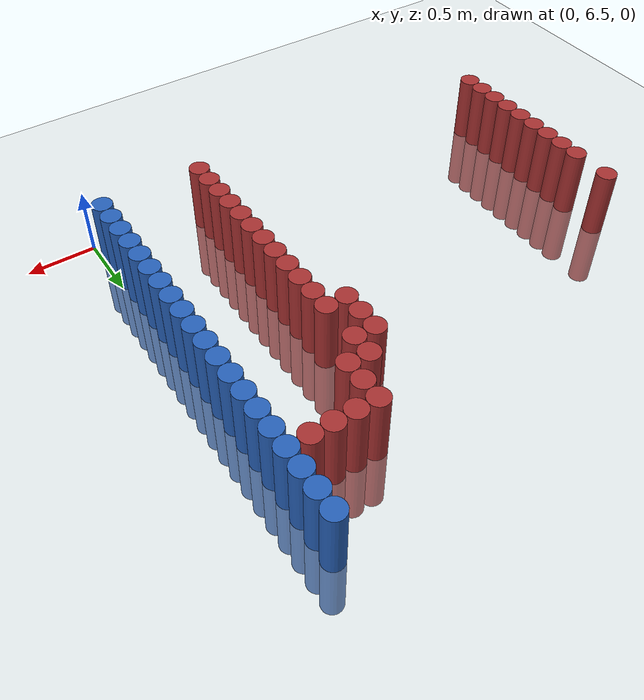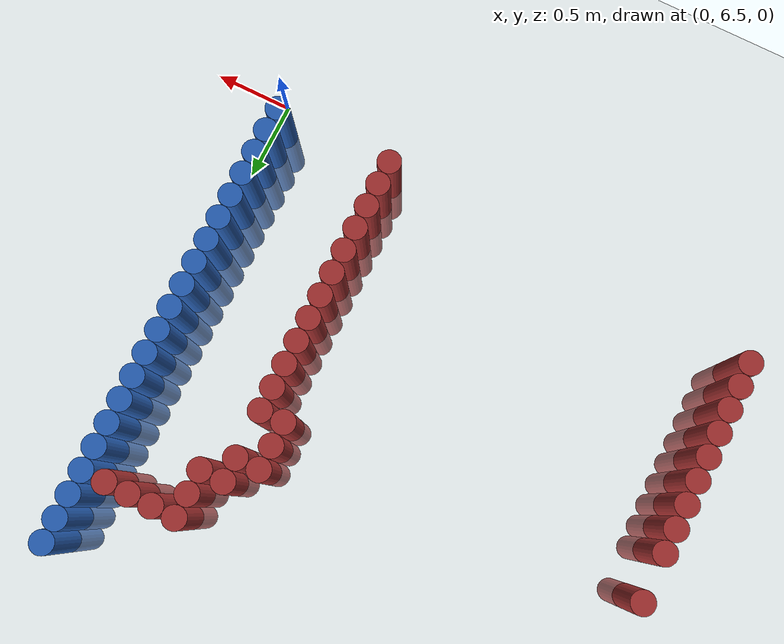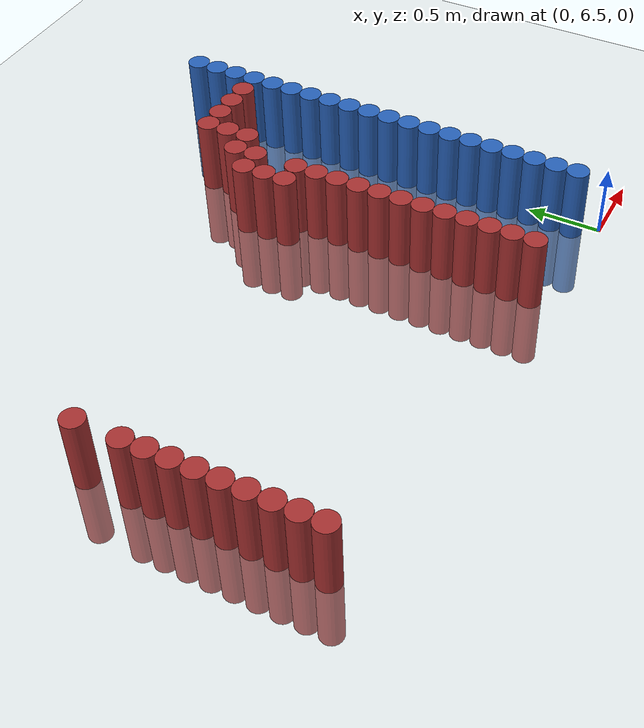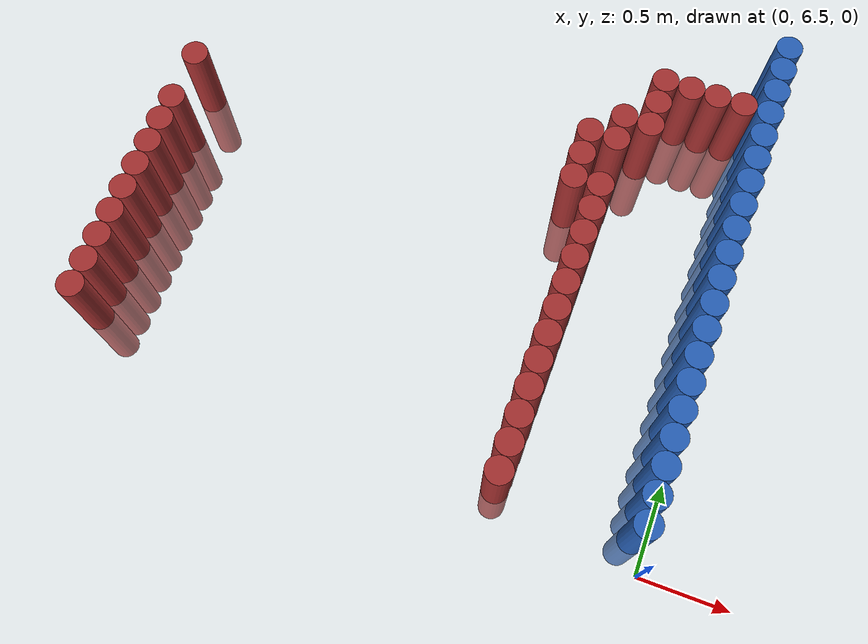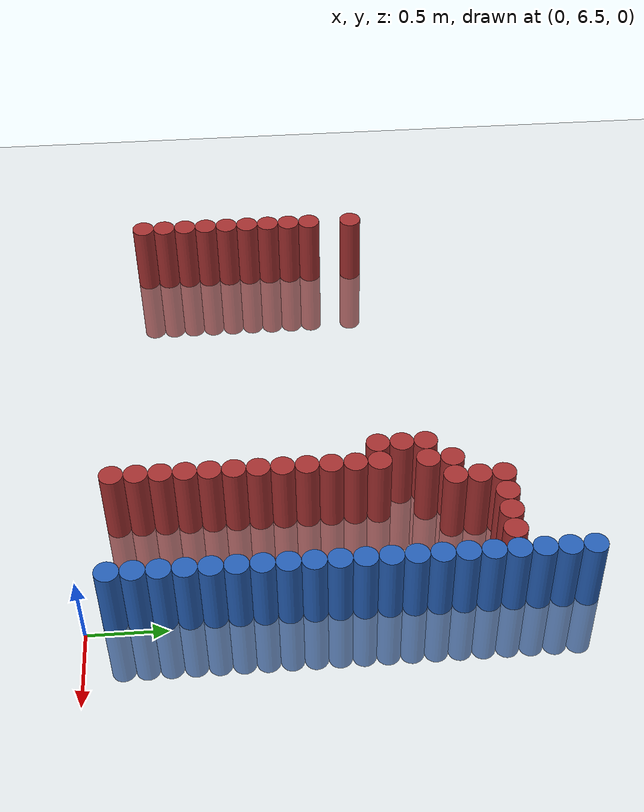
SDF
<sdf version="1.6">
 <world name="default">
  <model name="ground_plane">
   <static>1</static>
   <link name="link">
    <collision name="collision">
     <geometry><plane><normal>0 0 1</normal><size>100 100</size></plane></geometry>
     <surface><friction><ode><mu>100</mu><mu2>50</mu2></ode></friction></surface>
    </collision>
    <visual name="visual">
     <cast_shadows>0</cast_shadows>
     <geometry><plane><normal>0 0 1</normal><size>100 100</size></plane></geometry>
     <material>
      <script><uri>file://media/materials/scripts/gazebo.material</uri><name>Gazebo/Grey</name></script>
     </material>
    </visual>
   </link>
  </model>
  <model name="unit_cylinder_178">
   <static>1</static>
   <pose>-3.225000 6.825000 0.000000 0.000000 0.000000 0.000000</pose>
   <link name="link">
    <inertial>
     <mass>1</mass>
     <inertia><ixx>0.145833</ixx><ixy>0</ixy><ixz>0</ixz><iyy>0.145833</iyy><iyz>0</iyz><izz>0.125</izz></inertia>
    </inertial>
    <collision name="collision">
     <geometry><cylinder><radius>0.075000</radius><length>1</length></cylinder></geometry>
    </collision>
    <visual name="visual">
     <geometry><cylinder><radius>0.075000</radius><length>1</length></cylinder></geometry>
     <material>
      <ambient>0.648000 0.192000 0.192000 1</ambient>
      <diffuse>0.648000 0.192000 0.192000 1</diffuse>
     </material>
     <material>
      <script><name>Gazebo/Grey</name><uri>file://media/materials/scripts/gazebo.material</uri></script>
     </material>
    </visual>
   </link>
  </model>
  <model name="unit_cylinder_179">
   <static>1</static>
   <pose>-3.225000 6.975000 0.000000 0.000000 0.000000 0.000000</pose>
   <link name="link">
    <inertial>
     <mass>1</mass>
     <inertia><ixx>0.145833</ixx><ixy>0</ixy><ixz>0</ixz><iyy>0.145833</iyy><iyz>0</iyz><izz>0.125</izz></inertia>
    </inertial>
    <collision name="collision">
     <geometry><cylinder><radius>0.075000</radius><length>1</length></cylinder></geometry>
    </collision>
    <visual name="visual">
     <geometry><cylinder><radius>0.075000</radius><length>1</length></cylinder></geometry>
     <material>
      <ambient>0.648000 0.192000 0.192000 1</ambient>
      <diffuse>0.648000 0.192000 0.192000 1</diffuse>
     </material>
     <material>
      <script><name>Gazebo/Grey</name><uri>file://media/materials/scripts/gazebo.material</uri></script>
     </material>
    </visual>
   </link>
  </model>
  <model name="unit_cylinder_180">
   <static>1</static>
   <pose>-3.225000 7.125000 0.000000 0.000000 0.000000 0.000000</pose>
   <link name="link">
    <inertial>
     <mass>1</mass>
     <inertia><ixx>0.145833</ixx><ixy>0</ixy><ixz>0</ixz><iyy>0.145833</iyy><iyz>0</iyz><izz>0.125</izz></inertia>
    </inertial>
    <collision name="collision">
     <geometry><cylinder><radius>0.075000</radius><length>1</length></cylinder></geometry>
    </collision>
    <visual name="visual">
     <geometry><cylinder><radius>0.075000</radius><length>1</length></cylinder></geometry>
     <material>
      <ambient>0.648000 0.192000 0.192000 1</ambient>
      <diffuse>0.648000 0.192000 0.192000 1</diffuse>
     </material>
     <material>
      <script><name>Gazebo/Grey</name><uri>file://media/materials/scripts/gazebo.material</uri></script>
     </material>
    </visual>
   </link>
  </model>
  <model name="unit_cylinder_181">
   <static>1</static>
   <pose>-3.225000 7.275000 0.000000 0.000000 0.000000 0.000000</pose>
   <link name="link">
    <inertial>
     <mass>1</mass>
     <inertia><ixx>0.145833</ixx><ixy>0</ixy><ixz>0</ixz><iyy>0.145833</iyy><iyz>0</iyz><izz>0.125</izz></inertia>
    </inertial>
    <collision name="collision">
     <geometry><cylinder><radius>0.075000</radius><length>1</length></cylinder></geometry>
    </collision>
    <visual name="visual">
     <geometry><cylinder><radius>0.075000</radius><length>1</length></cylinder></geometry>
     <material>
      <ambient>0.648000 0.192000 0.192000 1</ambient>
      <diffuse>0.648000 0.192000 0.192000 1</diffuse>
     </material>
     <material>
      <script><name>Gazebo/Grey</name><uri>file://media/materials/scripts/gazebo.material</uri></script>
     </material>
    </visual>
   </link>
  </model>
  <model name="unit_cylinder_182">
   <static>1</static>
   <pose>-3.225000 7.425000 0.000000 0.000000 0.000000 0.000000</pose>
   <link name="link">
    <inertial>
     <mass>1</mass>
     <inertia><ixx>0.145833</ixx><ixy>0</ixy><ixz>0</ixz><iyy>0.145833</iyy><iyz>0</iyz><izz>0.125</izz></inertia>
    </inertial>
    <collision name="collision">
     <geometry><cylinder><radius>0.075000</radius><length>1</length></cylinder></geometry>
    </collision>
    <visual name="visual">
     <geometry><cylinder><radius>0.075000</radius><length>1</length></cylinder></geometry>
     <material>
      <ambient>0.648000 0.192000 0.192000 1</ambient>
      <diffuse>0.648000 0.192000 0.192000 1</diffuse>
     </material>
     <material>
      <script><name>Gazebo/Grey</name><uri>file://media/materials/scripts/gazebo.material</uri></script>
     </material>
    </visual>
   </link>
  </model>
  <model name="unit_cylinder_183">
   <static>1</static>
   <pose>-3.225000 7.575000 0.000000 0.000000 0.000000 0.000000</pose>
   <link name="link">
    <inertial>
     <mass>1</mass>
     <inertia><ixx>0.145833</ixx><ixy>0</ixy><ixz>0</ixz><iyy>0.145833</iyy><iyz>0</iyz><izz>0.125</izz></inertia>
    </inertial>
    <collision name="collision">
     <geometry><cylinder><radius>0.075000</radius><length>1</length></cylinder></geometry>
    </collision>
    <visual name="visual">
     <geometry><cylinder><radius>0.075000</radius><length>1</length></cylinder></geometry>
     <material>
      <ambient>0.648000 0.192000 0.192000 1</ambient>
      <diffuse>0.648000 0.192000 0.192000 1</diffuse>
     </material>
     <material>
      <script><name>Gazebo/Grey</name><uri>file://media/materials/scripts/gazebo.material</uri></script>
     </material>
    </visual>
   </link>
  </model>
  <model name="unit_cylinder_184">
   <static>1</static>
   <pose>-3.225000 7.725000 0.000000 0.000000 0.000000 0.000000</pose>
   <link name="link">
    <inertial>
     <mass>1</mass>
     <inertia><ixx>0.145833</ixx><ixy>0</ixy><ixz>0</ixz><iyy>0.145833</iyy><iyz>0</iyz><izz>0.125</izz></inertia>
    </inertial>
    <collision name="collision">
     <geometry><cylinder><radius>0.075000</radius><length>1</length></cylinder></geometry>
    </collision>
    <visual name="visual">
     <geometry><cylinder><radius>0.075000</radius><length>1</length></cylinder></geometry>
     <material>
      <ambient>0.648000 0.192000 0.192000 1</ambient>
      <diffuse>0.648000 0.192000 0.192000 1</diffuse>
     </material>
     <material>
      <script><name>Gazebo/Grey</name><uri>file://media/materials/scripts/gazebo.material</uri></script>
     </material>
    </visual>
   </link>
  </model>
  <model name="unit_cylinder_185">
   <static>1</static>
   <pose>-3.225000 7.875000 0.000000 0.000000 0.000000 0.000000</pose>
   <link name="link">
    <inertial>
     <mass>1</mass>
     <inertia><ixx>0.145833</ixx><ixy>0</ixy><ixz>0</ixz><iyy>0.145833</iyy><iyz>0</iyz><izz>0.125</izz></inertia>
    </inertial>
    <collision name="collision">
     <geometry><cylinder><radius>0.075000</radius><length>1</length></cylinder></geometry>
    </collision>
    <visual name="visual">
     <geometry><cylinder><radius>0.075000</radius><length>1</length></cylinder></geometry>
     <material>
      <ambient>0.648000 0.192000 0.192000 1</ambient>
      <diffuse>0.648000 0.192000 0.192000 1</diffuse>
     </material>
     <material>
      <script><name>Gazebo/Grey</name><uri>file://media/materials/scripts/gazebo.material</uri></script>
     </material>
    </visual>
   </link>
  </model>
  <model name="unit_cylinder_186">
   <static>1</static>
   <pose>-3.225000 8.025000 0.000000 0.000000 0.000000 0.000000</pose>
   <link name="link">
    <inertial>
     <mass>1</mass>
     <inertia><ixx>0.145833</ixx><ixy>0</ixy><ixz>0</ixz><iyy>0.145833</iyy><iyz>0</iyz><izz>0.125</izz></inertia>
    </inertial>
    <collision name="collision">
     <geometry><cylinder><radius>0.075000</radius><length>1</length></cylinder></geometry>
    </collision>
    <visual name="visual">
     <geometry><cylinder><radius>0.075000</radius><length>1</length></cylinder></geometry>
     <material>
      <ambient>0.648000 0.192000 0.192000 1</ambient>
      <diffuse>0.648000 0.192000 0.192000 1</diffuse>
     </material>
     <material>
      <script><name>Gazebo/Grey</name><uri>file://media/materials/scripts/gazebo.material</uri></script>
     </material>
    </visual>
   </link>
  </model>
  <model name="unit_cylinder_187">
   <static>1</static>
   <pose>-3.225000 8.325000 0.000000 0.000000 0.000000 0.000000</pose>
   <link name="link">
    <inertial>
     <mass>1</mass>
     <inertia><ixx>0.145833</ixx><ixy>0</ixy><ixz>0</ixz><iyy>0.145833</iyy><iyz>0</iyz><izz>0.125</izz></inertia>
    </inertial>
    <collision name="collision">
     <geometry><cylinder><radius>0.075000</radius><length>1</length></cylinder></geometry>
    </collision>
    <visual name="visual">
     <geometry><cylinder><radius>0.075000</radius><length>1</length></cylinder></geometry>
     <material>
      <ambient>0.648000 0.192000 0.192000 1</ambient>
      <diffuse>0.648000 0.192000 0.192000 1</diffuse>
     </material>
     <material>
      <script><name>Gazebo/Grey</name><uri>file://media/materials/scripts/gazebo.material</uri></script>
     </material>
    </visual>
   </link>
  </model>
  <model name="unit_cylinder_195">
   <static>1</static>
   <pose>-0.975000 8.325000 0.000000 0.000000 0.000000 0.000000</pose>
   <link name="link">
    <inertial>
     <mass>1</mass>
     <inertia><ixx>0.145833</ixx><ixy>0</ixy><ixz>0</ixz><iyy>0.145833</iyy><iyz>0</iyz><izz>0.125</izz></inertia>
    </inertial>
    <collision name="collision">
     <geometry><cylinder><radius>0.075000</radius><length>1</length></cylinder></geometry>
    </collision>
    <visual name="visual">
     <geometry><cylinder><radius>0.075000</radius><length>1</length></cylinder></geometry>
     <material>
      <ambient>0.648000 0.192000 0.192000 1</ambient>
      <diffuse>0.648000 0.192000 0.192000 1</diffuse>
     </material>
     <material>
      <script><name>Gazebo/Grey</name><uri>file://media/materials/scripts/gazebo.material</uri></script>
     </material>
    </visual>
   </link>
  </model>
  <model name="unit_cylinder_196">
   <static>1</static>
   <pose>-0.975000 8.475000 0.000000 0.000000 0.000000 0.000000</pose>
   <link name="link">
    <inertial>
     <mass>1</mass>
     <inertia><ixx>0.145833</ixx><ixy>0</ixy><ixz>0</ixz><iyy>0.145833</iyy><iyz>0</iyz><izz>0.125</izz></inertia>
    </inertial>
    <collision name="collision">
     <geometry><cylinder><radius>0.075000</radius><length>1</length></cylinder></geometry>
    </collision>
    <visual name="visual">
     <geometry><cylinder><radius>0.075000</radius><length>1</length></cylinder></geometry>
     <material>
      <ambient>0.648000 0.192000 0.192000 1</ambient>
      <diffuse>0.648000 0.192000 0.192000 1</diffuse>
     </material>
     <material>
      <script><name>Gazebo/Grey</name><uri>file://media/materials/scripts/gazebo.material</uri></script>
     </material>
    </visual>
   </link>
  </model>
  <model name="unit_cylinder_197">
   <static>1</static>
   <pose>-0.975000 8.625000 0.000000 0.000000 0.000000 0.000000</pose>
   <link name="link">
    <inertial>
     <mass>1</mass>
     <inertia><ixx>0.145833</ixx><ixy>0</ixy><ixz>0</ixz><iyy>0.145833</iyy><iyz>0</iyz><izz>0.125</izz></inertia>
    </inertial>
    <collision name="collision">
     <geometry><cylinder><radius>0.075000</radius><length>1</length></cylinder></geometry>
    </collision>
    <visual name="visual">
     <geometry><cylinder><radius>0.075000</radius><length>1</length></cylinder></geometry>
     <material>
      <ambient>0.648000 0.192000 0.192000 1</ambient>
      <diffuse>0.648000 0.192000 0.192000 1</diffuse>
     </material>
     <material>
      <script><name>Gazebo/Grey</name><uri>file://media/materials/scripts/gazebo.material</uri></script>
     </material>
    </visual>
   </link>
  </model>
  <model name="unit_cylinder_206">
   <static>1</static>
   <pose>-0.825000 6.675000 0.000000 0.000000 0.000000 0.000000</pose>
   <link name="link">
    <inertial>
     <mass>1</mass>
     <inertia><ixx>0.145833</ixx><ixy>0</ixy><ixz>0</ixz><iyy>0.145833</iyy><iyz>0</iyz><izz>0.125</izz></inertia>
    </inertial>
    <collision name="collision">
     <geometry><cylinder><radius>0.075000</radius><length>1</length></cylinder></geometry>
    </collision>
    <visual name="visual">
     <geometry><cylinder><radius>0.075000</radius><length>1</length></cylinder></geometry>
     <material>
      <ambient>0.648000 0.192000 0.192000 1</ambient>
      <diffuse>0.648000 0.192000 0.192000 1</diffuse>
     </material>
     <material>
      <script><name>Gazebo/Grey</name><uri>file://media/materials/scripts/gazebo.material</uri></script>
     </material>
    </visual>
   </link>
  </model>
  <model name="unit_cylinder_207">
   <static>1</static>
   <pose>-0.825000 6.825000 0.000000 0.000000 0.000000 0.000000</pose>
   <link name="link">
    <inertial>
     <mass>1</mass>
     <inertia><ixx>0.145833</ixx><ixy>0</ixy><ixz>0</ixz><iyy>0.145833</iyy><iyz>0</iyz><izz>0.125</izz></inertia>
    </inertial>
    <collision name="collision">
     <geometry><cylinder><radius>0.075000</radius><length>1</length></cylinder></geometry>
    </collision>
    <visual name="visual">
     <geometry><cylinder><radius>0.075000</radius><length>1</length></cylinder></geometry>
     <material>
      <ambient>0.648000 0.192000 0.192000 1</ambient>
      <diffuse>0.648000 0.192000 0.192000 1</diffuse>
     </material>
     <material>
      <script><name>Gazebo/Grey</name><uri>file://media/materials/scripts/gazebo.material</uri></script>
     </material>
    </visual>
   </link>
  </model>
  <model name="unit_cylinder_208">
   <static>1</static>
   <pose>-0.825000 6.975000 0.000000 0.000000 0.000000 0.000000</pose>
   <link name="link">
    <inertial>
     <mass>1</mass>
     <inertia><ixx>0.145833</ixx><ixy>0</ixy><ixz>0</ixz><iyy>0.145833</iyy><iyz>0</iyz><izz>0.125</izz></inertia>
    </inertial>
    <collision name="collision">
     <geometry><cylinder><radius>0.075000</radius><length>1</length></cylinder></geometry>
    </collision>
    <visual name="visual">
     <geometry><cylinder><radius>0.075000</radius><length>1</length></cylinder></geometry>
     <material>
      <ambient>0.648000 0.192000 0.192000 1</ambient>
      <diffuse>0.648000 0.192000 0.192000 1</diffuse>
     </material>
     <material>
      <script><name>Gazebo/Grey</name><uri>file://media/materials/scripts/gazebo.material</uri></script>
     </material>
    </visual>
   </link>
  </model>
  <model name="unit_cylinder_209">
   <static>1</static>
   <pose>-0.825000 7.125000 0.000000 0.000000 0.000000 0.000000</pose>
   <link name="link">
    <inertial>
     <mass>1</mass>
     <inertia><ixx>0.145833</ixx><ixy>0</ixy><ixz>0</ixz><iyy>0.145833</iyy><iyz>0</iyz><izz>0.125</izz></inertia>
    </inertial>
    <collision name="collision">
     <geometry><cylinder><radius>0.075000</radius><length>1</length></cylinder></geometry>
    </collision>
    <visual name="visual">
     <geometry><cylinder><radius>0.075000</radius><length>1</length></cylinder></geometry>
     <material>
      <ambient>0.648000 0.192000 0.192000 1</ambient>
      <diffuse>0.648000 0.192000 0.192000 1</diffuse>
     </material>
     <material>
      <script><name>Gazebo/Grey</name><uri>file://media/materials/scripts/gazebo.material</uri></script>
     </material>
    </visual>
   </link>
  </model>
  <model name="unit_cylinder_210">
   <static>1</static>
   <pose>-0.825000 7.275000 0.000000 0.000000 0.000000 0.000000</pose>
   <link name="link">
    <inertial>
     <mass>1</mass>
     <inertia><ixx>0.145833</ixx><ixy>0</ixy><ixz>0</ixz><iyy>0.145833</iyy><iyz>0</iyz><izz>0.125</izz></inertia>
    </inertial>
    <collision name="collision">
     <geometry><cylinder><radius>0.075000</radius><length>1</length></cylinder></geometry>
    </collision>
    <visual name="visual">
     <geometry><cylinder><radius>0.075000</radius><length>1</length></cylinder></geometry>
     <material>
      <ambient>0.648000 0.192000 0.192000 1</ambient>
      <diffuse>0.648000 0.192000 0.192000 1</diffuse>
     </material>
     <material>
      <script><name>Gazebo/Grey</name><uri>file://media/materials/scripts/gazebo.material</uri></script>
     </material>
    </visual>
   </link>
  </model>
  <model name="unit_cylinder_211">
   <static>1</static>
   <pose>-0.825000 7.425000 0.000000 0.000000 0.000000 0.000000</pose>
   <link name="link">
    <inertial>
     <mass>1</mass>
     <inertia><ixx>0.145833</ixx><ixy>0</ixy><ixz>0</ixz><iyy>0.145833</iyy><iyz>0</iyz><izz>0.125</izz></inertia>
    </inertial>
    <collision name="collision">
     <geometry><cylinder><radius>0.075000</radius><length>1</length></cylinder></geometry>
    </collision>
    <visual name="visual">
     <geometry><cylinder><radius>0.075000</radius><length>1</length></cylinder></geometry>
     <material>
      <ambient>0.648000 0.192000 0.192000 1</ambient>
      <diffuse>0.648000 0.192000 0.192000 1</diffuse>
     </material>
     <material>
      <script><name>Gazebo/Grey</name><uri>file://media/materials/scripts/gazebo.material</uri></script>
     </material>
    </visual>
   </link>
  </model>
  <model name="unit_cylinder_212">
   <static>1</static>
   <pose>-0.825000 7.575000 0.000000 0.000000 0.000000 0.000000</pose>
   <link name="link">
    <inertial>
     <mass>1</mass>
     <inertia><ixx>0.145833</ixx><ixy>0</ixy><ixz>0</ixz><iyy>0.145833</iyy><iyz>0</iyz><izz>0.125</izz></inertia>
    </inertial>
    <collision name="collision">
     <geometry><cylinder><radius>0.075000</radius><length>1</length></cylinder></geometry>
    </collision>
    <visual name="visual">
     <geometry><cylinder><radius>0.075000</radius><length>1</length></cylinder></geometry>
     <material>
      <ambient>0.648000 0.192000 0.192000 1</ambient>
      <diffuse>0.648000 0.192000 0.192000 1</diffuse>
     </material>
     <material>
      <script><name>Gazebo/Grey</name><uri>file://media/materials/scripts/gazebo.material</uri></script>
     </material>
    </visual>
   </link>
  </model>
  <model name="unit_cylinder_213">
   <static>1</static>
   <pose>-0.825000 7.725000 0.000000 0.000000 0.000000 0.000000</pose>
   <link name="link">
    <inertial>
     <mass>1</mass>
     <inertia><ixx>0.145833</ixx><ixy>0</ixy><ixz>0</ixz><iyy>0.145833</iyy><iyz>0</iyz><izz>0.125</izz></inertia>
    </inertial>
    <collision name="collision">
     <geometry><cylinder><radius>0.075000</radius><length>1</length></cylinder></geometry>
    </collision>
    <visual name="visual">
     <geometry><cylinder><radius>0.075000</radius><length>1</length></cylinder></geometry>
     <material>
      <ambient>0.648000 0.192000 0.192000 1</ambient>
      <diffuse>0.648000 0.192000 0.192000 1</diffuse>
     </material>
     <material>
      <script><name>Gazebo/Grey</name><uri>file://media/materials/scripts/gazebo.material</uri></script>
     </material>
    </visual>
   </link>
  </model>
  <model name="unit_cylinder_214">
   <static>1</static>
   <pose>-0.825000 7.875000 0.000000 0.000000 0.000000 0.000000</pose>
   <link name="link">
    <inertial>
     <mass>1</mass>
     <inertia><ixx>0.145833</ixx><ixy>0</ixy><ixz>0</ixz><iyy>0.145833</iyy><iyz>0</iyz><izz>0.125</izz></inertia>
    </inertial>
    <collision name="collision">
     <geometry><cylinder><radius>0.075000</radius><length>1</length></cylinder></geometry>
    </collision>
    <visual name="visual">
     <geometry><cylinder><radius>0.075000</radius><length>1</length></cylinder></geometry>
     <material>
      <ambient>0.648000 0.192000 0.192000 1</ambient>
      <diffuse>0.648000 0.192000 0.192000 1</diffuse>
     </material>
     <material>
      <script><name>Gazebo/Grey</name><uri>file://media/materials/scripts/gazebo.material</uri></script>
     </material>
    </visual>
   </link>
  </model>
  <model name="unit_cylinder_215">
   <static>1</static>
   <pose>-0.825000 8.025000 0.000000 0.000000 0.000000 0.000000</pose>
   <link name="link">
    <inertial>
     <mass>1</mass>
     <inertia><ixx>0.145833</ixx><ixy>0</ixy><ixz>0</ixz><iyy>0.145833</iyy><iyz>0</iyz><izz>0.125</izz></inertia>
    </inertial>
    <collision name="collision">
     <geometry><cylinder><radius>0.075000</radius><length>1</length></cylinder></geometry>
    </collision>
    <visual name="visual">
     <geometry><cylinder><radius>0.075000</radius><length>1</length></cylinder></geometry>
     <material>
      <ambient>0.648000 0.192000 0.192000 1</ambient>
      <diffuse>0.648000 0.192000 0.192000 1</diffuse>
     </material>
     <material>
      <script><name>Gazebo/Grey</name><uri>file://media/materials/scripts/gazebo.material</uri></script>
     </material>
    </visual>
   </link>
  </model>
  <model name="unit_cylinder_216">
   <static>1</static>
   <pose>-0.825000 8.175000 0.000000 0.000000 0.000000 0.000000</pose>
   <link name="link">
    <inertial>
     <mass>1</mass>
     <inertia><ixx>0.145833</ixx><ixy>0</ixy><ixz>0</ixz><iyy>0.145833</iyy><iyz>0</iyz><izz>0.125</izz></inertia>
    </inertial>
    <collision name="collision">
     <geometry><cylinder><radius>0.075000</radius><length>1</length></cylinder></geometry>
    </collision>
    <visual name="visual">
     <geometry><cylinder><radius>0.075000</radius><length>1</length></cylinder></geometry>
     <material>
      <ambient>0.648000 0.192000 0.192000 1</ambient>
      <diffuse>0.648000 0.192000 0.192000 1</diffuse>
     </material>
     <material>
      <script><name>Gazebo/Grey</name><uri>file://media/materials/scripts/gazebo.material</uri></script>
     </material>
    </visual>
   </link>
  </model>
  <model name="unit_cylinder_217">
   <static>1</static>
   <pose>-0.825000 8.325000 0.000000 0.000000 0.000000 0.000000</pose>
   <link name="link">
    <inertial>
     <mass>1</mass>
     <inertia><ixx>0.145833</ixx><ixy>0</ixy><ixz>0</ixz><iyy>0.145833</iyy><iyz>0</iyz><izz>0.125</izz></inertia>
    </inertial>
    <collision name="collision">
     <geometry><cylinder><radius>0.075000</radius><length>1</length></cylinder></geometry>
    </collision>
    <visual name="visual">
     <geometry><cylinder><radius>0.075000</radius><length>1</length></cylinder></geometry>
     <material>
      <ambient>0.648000 0.192000 0.192000 1</ambient>
      <diffuse>0.648000 0.192000 0.192000 1</diffuse>
     </material>
     <material>
      <script><name>Gazebo/Grey</name><uri>file://media/materials/scripts/gazebo.material</uri></script>
     </material>
    </visual>
   </link>
  </model>
  <model name="unit_cylinder_218">
   <static>1</static>
   <pose>-0.825000 8.625000 0.000000 0.000000 0.000000 0.000000</pose>
   <link name="link">
    <inertial>
     <mass>1</mass>
     <inertia><ixx>0.145833</ixx><ixy>0</ixy><ixz>0</ixz><iyy>0.145833</iyy><iyz>0</iyz><izz>0.125</izz></inertia>
    </inertial>
    <collision name="collision">
     <geometry><cylinder><radius>0.075000</radius><length>1</length></cylinder></geometry>
    </collision>
    <visual name="visual">
     <geometry><cylinder><radius>0.075000</radius><length>1</length></cylinder></geometry>
     <material>
      <ambient>0.648000 0.192000 0.192000 1</ambient>
      <diffuse>0.648000 0.192000 0.192000 1</diffuse>
     </material>
     <material>
      <script><name>Gazebo/Grey</name><uri>file://media/materials/scripts/gazebo.material</uri></script>
     </material>
    </visual>
   </link>
  </model>
  <model name="unit_cylinder_219">
   <static>1</static>
   <pose>-0.825000 8.775000 0.000000 0.000000 0.000000 0.000000</pose>
   <link name="link">
    <inertial>
     <mass>1</mass>
     <inertia><ixx>0.145833</ixx><ixy>0</ixy><ixz>0</ixz><iyy>0.145833</iyy><iyz>0</iyz><izz>0.125</izz></inertia>
    </inertial>
    <collision name="collision">
     <geometry><cylinder><radius>0.075000</radius><length>1</length></cylinder></geometry>
    </collision>
    <visual name="visual">
     <geometry><cylinder><radius>0.075000</radius><length>1</length></cylinder></geometry>
     <material>
      <ambient>0.648000 0.192000 0.192000 1</ambient>
      <diffuse>0.648000 0.192000 0.192000 1</diffuse>
     </material>
     <material>
      <script><name>Gazebo/Grey</name><uri>file://media/materials/scripts/gazebo.material</uri></script>
     </material>
    </visual>
   </link>
  </model>
  <model name="unit_cylinder_224">
   <static>1</static>
   <pose>-0.675000 8.775000 0.000000 0.000000 0.000000 0.000000</pose>
   <link name="link">
    <inertial>
     <mass>1</mass>
     <inertia><ixx>0.145833</ixx><ixy>0</ixy><ixz>0</ixz><iyy>0.145833</iyy><iyz>0</iyz><izz>0.125</izz></inertia>
    </inertial>
    <collision name="collision">
     <geometry><cylinder><radius>0.075000</radius><length>1</length></cylinder></geometry>
    </collision>
    <visual name="visual">
     <geometry><cylinder><radius>0.075000</radius><length>1</length></cylinder></geometry>
     <material>
      <ambient>0.648000 0.192000 0.192000 1</ambient>
      <diffuse>0.648000 0.192000 0.192000 1</diffuse>
     </material>
     <material>
      <script><name>Gazebo/Grey</name><uri>file://media/materials/scripts/gazebo.material</uri></script>
     </material>
    </visual>
   </link>
  </model>
  <model name="unit_cylinder_225">
   <static>1</static>
   <pose>-0.675000 8.925000 0.000000 0.000000 0.000000 0.000000</pose>
   <link name="link">
    <inertial>
     <mass>1</mass>
     <inertia><ixx>0.145833</ixx><ixy>0</ixy><ixz>0</ixz><iyy>0.145833</iyy><iyz>0</iyz><izz>0.125</izz></inertia>
    </inertial>
    <collision name="collision">
     <geometry><cylinder><radius>0.075000</radius><length>1</length></cylinder></geometry>
    </collision>
    <visual name="visual">
     <geometry><cylinder><radius>0.075000</radius><length>1</length></cylinder></geometry>
     <material>
      <ambient>0.648000 0.192000 0.192000 1</ambient>
      <diffuse>0.648000 0.192000 0.192000 1</diffuse>
     </material>
     <material>
      <script><name>Gazebo/Grey</name><uri>file://media/materials/scripts/gazebo.material</uri></script>
     </material>
    </visual>
   </link>
  </model>
  <model name="unit_cylinder_226">
   <static>1</static>
   <pose>-0.675000 9.075000 0.000000 0.000000 0.000000 0.000000</pose>
   <link name="link">
    <inertial>
     <mass>1</mass>
     <inertia><ixx>0.145833</ixx><ixy>0</ixy><ixz>0</ixz><iyy>0.145833</iyy><iyz>0</iyz><izz>0.125</izz></inertia>
    </inertial>
    <collision name="collision">
     <geometry><cylinder><radius>0.075000</radius><length>1</length></cylinder></geometry>
    </collision>
    <visual name="visual">
     <geometry><cylinder><radius>0.075000</radius><length>1</length></cylinder></geometry>
     <material>
      <ambient>0.648000 0.192000 0.192000 1</ambient>
      <diffuse>0.648000 0.192000 0.192000 1</diffuse>
     </material>
     <material>
      <script><name>Gazebo/Grey</name><uri>file://media/materials/scripts/gazebo.material</uri></script>
     </material>
    </visual>
   </link>
  </model>
  <model name="unit_cylinder_228">
   <static>1</static>
   <pose>-0.525000 9.075000 0.000000 0.000000 0.000000 0.000000</pose>
   <link name="link">
    <inertial>
     <mass>1</mass>
     <inertia><ixx>0.145833</ixx><ixy>0</ixy><ixz>0</ixz><iyy>0.145833</iyy><iyz>0</iyz><izz>0.125</izz></inertia>
    </inertial>
    <collision name="collision">
     <geometry><cylinder><radius>0.075000</radius><length>1</length></cylinder></geometry>
    </collision>
    <visual name="visual">
     <geometry><cylinder><radius>0.075000</radius><length>1</length></cylinder></geometry>
     <material>
      <ambient>0.648000 0.192000 0.192000 1</ambient>
      <diffuse>0.648000 0.192000 0.192000 1</diffuse>
     </material>
     <material>
      <script><name>Gazebo/Grey</name><uri>file://media/materials/scripts/gazebo.material</uri></script>
     </material>
    </visual>
   </link>
  </model>
  <model name="unit_cylinder_230">
   <static>1</static>
   <pose>-0.375000 9.075000 0.000000 0.000000 0.000000 0.000000</pose>
   <link name="link">
    <inertial>
     <mass>1</mass>
     <inertia><ixx>0.145833</ixx><ixy>0</ixy><ixz>0</ixz><iyy>0.145833</iyy><iyz>0</iyz><izz>0.125</izz></inertia>
    </inertial>
    <collision name="collision">
     <geometry><cylinder><radius>0.075000</radius><length>1</length></cylinder></geometry>
    </collision>
    <visual name="visual">
     <geometry><cylinder><radius>0.075000</radius><length>1</length></cylinder></geometry>
     <material>
      <ambient>0.648000 0.192000 0.192000 1</ambient>
      <diffuse>0.648000 0.192000 0.192000 1</diffuse>
     </material>
     <material>
      <script><name>Gazebo/Grey</name><uri>file://media/materials/scripts/gazebo.material</uri></script>
     </material>
    </visual>
   </link>
  </model>
  <model name="unit_cylinder_232">
   <static>1</static>
   <pose>-0.225000 9.075000 0.000000 0.000000 0.000000 0.000000</pose>
   <link name="link">
    <inertial>
     <mass>1</mass>
     <inertia><ixx>0.145833</ixx><ixy>0</ixy><ixz>0</ixz><iyy>0.145833</iyy><iyz>0</iyz><izz>0.125</izz></inertia>
    </inertial>
    <collision name="collision">
     <geometry><cylinder><radius>0.075000</radius><length>1</length></cylinder></geometry>
    </collision>
    <visual name="visual">
     <geometry><cylinder><radius>0.075000</radius><length>1</length></cylinder></geometry>
     <material>
      <ambient>0.648000 0.192000 0.192000 1</ambient>
      <diffuse>0.648000 0.192000 0.192000 1</diffuse>
     </material>
     <material>
      <script><name>Gazebo/Grey</name><uri>file://media/materials/scripts/gazebo.material</uri></script>
     </material>
    </visual>
   </link>
  </model>
  <model name="unit_cylinder_243">
   <static>1</static>
   <pose>-0.075000 6.675000 0.000000 0.000000 0.000000 0.000000</pose>
   <link name="link">
    <inertial>
     <mass>1</mass>
     <inertia><ixx>0.145833</ixx><ixy>0</ixy><ixz>0</ixz><iyy>0.145833</iyy><iyz>0</iyz><izz>0.125</izz></inertia>
    </inertial>
    <collision name="collision">
     <geometry><cylinder><radius>0.075000</radius><length>1</length></cylinder></geometry>
    </collision>
    <visual name="visual">
     <geometry><cylinder><radius>0.075000</radius><length>1</length></cylinder></geometry>
     <material>
      <ambient>0.152000 0.379000 0.720000 1</ambient>
      <diffuse>0.152000 0.379000 0.720000 1</diffuse>
     </material>
     <material>
      <script><name>Gazebo/Grey</name><uri>file://media/materials/scripts/gazebo.material</uri></script>
     </material>
    </visual>
   </link>
  </model>
  <model name="unit_cylinder_244">
   <static>1</static>
   <pose>-0.075000 6.825000 0.000000 0.000000 0.000000 0.000000</pose>
   <link name="link">
    <inertial>
     <mass>1</mass>
     <inertia><ixx>0.145833</ixx><ixy>0</ixy><ixz>0</ixz><iyy>0.145833</iyy><iyz>0</iyz><izz>0.125</izz></inertia>
    </inertial>
    <collision name="collision">
     <geometry><cylinder><radius>0.075000</radius><length>1</length></cylinder></geometry>
    </collision>
    <visual name="visual">
     <geometry><cylinder><radius>0.075000</radius><length>1</length></cylinder></geometry>
     <material>
      <ambient>0.152000 0.379000 0.720000 1</ambient>
      <diffuse>0.152000 0.379000 0.720000 1</diffuse>
     </material>
     <material>
      <script><name>Gazebo/Grey</name><uri>file://media/materials/scripts/gazebo.material</uri></script>
     </material>
    </visual>
   </link>
  </model>
  <model name="unit_cylinder_245">
   <static>1</static>
   <pose>-0.075000 6.975000 0.000000 0.000000 0.000000 0.000000</pose>
   <link name="link">
    <inertial>
     <mass>1</mass>
     <inertia><ixx>0.145833</ixx><ixy>0</ixy><ixz>0</ixz><iyy>0.145833</iyy><iyz>0</iyz><izz>0.125</izz></inertia>
    </inertial>
    <collision name="collision">
     <geometry><cylinder><radius>0.075000</radius><length>1</length></cylinder></geometry>
    </collision>
    <visual name="visual">
     <geometry><cylinder><radius>0.075000</radius><length>1</length></cylinder></geometry>
     <material>
      <ambient>0.152000 0.379000 0.720000 1</ambient>
      <diffuse>0.152000 0.379000 0.720000 1</diffuse>
     </material>
     <material>
      <script><name>Gazebo/Grey</name><uri>file://media/materials/scripts/gazebo.material</uri></script>
     </material>
    </visual>
   </link>
  </model>
  <model name="unit_cylinder_246">
   <static>1</static>
   <pose>-0.075000 7.125000 0.000000 0.000000 0.000000 0.000000</pose>
   <link name="link">
    <inertial>
     <mass>1</mass>
     <inertia><ixx>0.145833</ixx><ixy>0</ixy><ixz>0</ixz><iyy>0.145833</iyy><iyz>0</iyz><izz>0.125</izz></inertia>
    </inertial>
    <collision name="collision">
     <geometry><cylinder><radius>0.075000</radius><length>1</length></cylinder></geometry>
    </collision>
    <visual name="visual">
     <geometry><cylinder><radius>0.075000</radius><length>1</length></cylinder></geometry>
     <material>
      <ambient>0.152000 0.379000 0.720000 1</ambient>
      <diffuse>0.152000 0.379000 0.720000 1</diffuse>
     </material>
     <material>
      <script><name>Gazebo/Grey</name><uri>file://media/materials/scripts/gazebo.material</uri></script>
     </material>
    </visual>
   </link>
  </model>
  <model name="unit_cylinder_247">
   <static>1</static>
   <pose>-0.075000 7.275000 0.000000 0.000000 0.000000 0.000000</pose>
   <link name="link">
    <inertial>
     <mass>1</mass>
     <inertia><ixx>0.145833</ixx><ixy>0</ixy><ixz>0</ixz><iyy>0.145833</iyy><iyz>0</iyz><izz>0.125</izz></inertia>
    </inertial>
    <collision name="collision">
     <geometry><cylinder><radius>0.075000</radius><length>1</length></cylinder></geometry>
    </collision>
    <visual name="visual">
     <geometry><cylinder><radius>0.075000</radius><length>1</length></cylinder></geometry>
     <material>
      <ambient>0.152000 0.379000 0.720000 1</ambient>
      <diffuse>0.152000 0.379000 0.720000 1</diffuse>
     </material>
     <material>
      <script><name>Gazebo/Grey</name><uri>file://media/materials/scripts/gazebo.material</uri></script>
     </material>
    </visual>
   </link>
  </model>
  <model name="unit_cylinder_248">
   <static>1</static>
   <pose>-0.075000 7.425000 0.000000 0.000000 0.000000 0.000000</pose>
   <link name="link">
    <inertial>
     <mass>1</mass>
     <inertia><ixx>0.145833</ixx><ixy>0</ixy><ixz>0</ixz><iyy>0.145833</iyy><iyz>0</iyz><izz>0.125</izz></inertia>
    </inertial>
    <collision name="collision">
     <geometry><cylinder><radius>0.075000</radius><length>1</length></cylinder></geometry>
    </collision>
    <visual name="visual">
     <geometry><cylinder><radius>0.075000</radius><length>1</length></cylinder></geometry>
     <material>
      <ambient>0.152000 0.379000 0.720000 1</ambient>
      <diffuse>0.152000 0.379000 0.720000 1</diffuse>
     </material>
     <material>
      <script><name>Gazebo/Grey</name><uri>file://media/materials/scripts/gazebo.material</uri></script>
     </material>
    </visual>
   </link>
  </model>
  <model name="unit_cylinder_249">
   <static>1</static>
   <pose>-0.075000 7.575000 0.000000 0.000000 0.000000 0.000000</pose>
   <link name="link">
    <inertial>
     <mass>1</mass>
     <inertia><ixx>0.145833</ixx><ixy>0</ixy><ixz>0</ixz><iyy>0.145833</iyy><iyz>0</iyz><izz>0.125</izz></inertia>
    </inertial>
    <collision name="collision">
     <geometry><cylinder><radius>0.075000</radius><length>1</length></cylinder></geometry>
    </collision>
    <visual name="visual">
     <geometry><cylinder><radius>0.075000</radius><length>1</length></cylinder></geometry>
     <material>
      <ambient>0.152000 0.379000 0.720000 1</ambient>
      <diffuse>0.152000 0.379000 0.720000 1</diffuse>
     </material>
     <material>
      <script><name>Gazebo/Grey</name><uri>file://media/materials/scripts/gazebo.material</uri></script>
     </material>
    </visual>
   </link>
  </model>
  <model name="unit_cylinder_250">
   <static>1</static>
   <pose>-0.075000 7.725000 0.000000 0.000000 0.000000 0.000000</pose>
   <link name="link">
    <inertial>
     <mass>1</mass>
     <inertia><ixx>0.145833</ixx><ixy>0</ixy><ixz>0</ixz><iyy>0.145833</iyy><iyz>0</iyz><izz>0.125</izz></inertia>
    </inertial>
    <collision name="collision">
     <geometry><cylinder><radius>0.075000</radius><length>1</length></cylinder></geometry>
    </collision>
    <visual name="visual">
     <geometry><cylinder><radius>0.075000</radius><length>1</length></cylinder></geometry>
     <material>
      <ambient>0.152000 0.379000 0.720000 1</ambient>
      <diffuse>0.152000 0.379000 0.720000 1</diffuse>
     </material>
     <material>
      <script><name>Gazebo/Grey</name><uri>file://media/materials/scripts/gazebo.material</uri></script>
     </material>
    </visual>
   </link>
  </model>
  <model name="unit_cylinder_251">
   <static>1</static>
   <pose>-0.075000 7.875000 0.000000 0.000000 0.000000 0.000000</pose>
   <link name="link">
    <inertial>
     <mass>1</mass>
     <inertia><ixx>0.145833</ixx><ixy>0</ixy><ixz>0</ixz><iyy>0.145833</iyy><iyz>0</iyz><izz>0.125</izz></inertia>
    </inertial>
    <collision name="collision">
     <geometry><cylinder><radius>0.075000</radius><length>1</length></cylinder></geometry>
    </collision>
    <visual name="visual">
     <geometry><cylinder><radius>0.075000</radius><length>1</length></cylinder></geometry>
     <material>
      <ambient>0.152000 0.379000 0.720000 1</ambient>
      <diffuse>0.152000 0.379000 0.720000 1</diffuse>
     </material>
     <material>
      <script><name>Gazebo/Grey</name><uri>file://media/materials/scripts/gazebo.material</uri></script>
     </material>
    </visual>
   </link>
  </model>
  <model name="unit_cylinder_252">
   <static>1</static>
   <pose>-0.075000 8.025000 0.000000 0.000000 0.000000 0.000000</pose>
   <link name="link">
    <inertial>
     <mass>1</mass>
     <inertia><ixx>0.145833</ixx><ixy>0</ixy><ixz>0</ixz><iyy>0.145833</iyy><iyz>0</iyz><izz>0.125</izz></inertia>
    </inertial>
    <collision name="collision">
     <geometry><cylinder><radius>0.075000</radius><length>1</length></cylinder></geometry>
    </collision>
    <visual name="visual">
     <geometry><cylinder><radius>0.075000</radius><length>1</length></cylinder></geometry>
     <material>
      <ambient>0.152000 0.379000 0.720000 1</ambient>
      <diffuse>0.152000 0.379000 0.720000 1</diffuse>
     </material>
     <material>
      <script><name>Gazebo/Grey</name><uri>file://media/materials/scripts/gazebo.material</uri></script>
     </material>
    </visual>
   </link>
  </model>
  <model name="unit_cylinder_253">
   <static>1</static>
   <pose>-0.075000 8.175000 0.000000 0.000000 0.000000 0.000000</pose>
   <link name="link">
    <inertial>
     <mass>1</mass>
     <inertia><ixx>0.145833</ixx><ixy>0</ixy><ixz>0</ixz><iyy>0.145833</iyy><iyz>0</iyz><izz>0.125</izz></inertia>
    </inertial>
    <collision name="collision">
     <geometry><cylinder><radius>0.075000</radius><length>1</length></cylinder></geometry>
    </collision>
    <visual name="visual">
     <geometry><cylinder><radius>0.075000</radius><length>1</length></cylinder></geometry>
     <material>
      <ambient>0.152000 0.379000 0.720000 1</ambient>
      <diffuse>0.152000 0.379000 0.720000 1</diffuse>
     </material>
     <material>
      <script><name>Gazebo/Grey</name><uri>file://media/materials/scripts/gazebo.material</uri></script>
     </material>
    </visual>
   </link>
  </model>
  <model name="unit_cylinder_254">
   <static>1</static>
   <pose>-0.075000 8.325000 0.000000 0.000000 0.000000 0.000000</pose>
   <link name="link">
    <inertial>
     <mass>1</mass>
     <inertia><ixx>0.145833</ixx><ixy>0</ixy><ixz>0</ixz><iyy>0.145833</iyy><iyz>0</iyz><izz>0.125</izz></inertia>
    </inertial>
    <collision name="collision">
     <geometry><cylinder><radius>0.075000</radius><length>1</length></cylinder></geometry>
    </collision>
    <visual name="visual">
     <geometry><cylinder><radius>0.075000</radius><length>1</length></cylinder></geometry>
     <material>
      <ambient>0.152000 0.379000 0.720000 1</ambient>
      <diffuse>0.152000 0.379000 0.720000 1</diffuse>
     </material>
     <material>
      <script><name>Gazebo/Grey</name><uri>file://media/materials/scripts/gazebo.material</uri></script>
     </material>
    </visual>
   </link>
  </model>
  <model name="unit_cylinder_255">
   <static>1</static>
   <pose>-0.075000 8.475000 0.000000 0.000000 0.000000 0.000000</pose>
   <link name="link">
    <inertial>
     <mass>1</mass>
     <inertia><ixx>0.145833</ixx><ixy>0</ixy><ixz>0</ixz><iyy>0.145833</iyy><iyz>0</iyz><izz>0.125</izz></inertia>
    </inertial>
    <collision name="collision">
     <geometry><cylinder><radius>0.075000</radius><length>1</length></cylinder></geometry>
    </collision>
    <visual name="visual">
     <geometry><cylinder><radius>0.075000</radius><length>1</length></cylinder></geometry>
     <material>
      <ambient>0.152000 0.379000 0.720000 1</ambient>
      <diffuse>0.152000 0.379000 0.720000 1</diffuse>
     </material>
     <material>
      <script><name>Gazebo/Grey</name><uri>file://media/materials/scripts/gazebo.material</uri></script>
     </material>
    </visual>
   </link>
  </model>
  <model name="unit_cylinder_256">
   <static>1</static>
   <pose>-0.075000 8.625000 0.000000 0.000000 0.000000 0.000000</pose>
   <link name="link">
    <inertial>
     <mass>1</mass>
     <inertia><ixx>0.145833</ixx><ixy>0</ixy><ixz>0</ixz><iyy>0.145833</iyy><iyz>0</iyz><izz>0.125</izz></inertia>
    </inertial>
    <collision name="collision">
     <geometry><cylinder><radius>0.075000</radius><length>1</length></cylinder></geometry>
    </collision>
    <visual name="visual">
     <geometry><cylinder><radius>0.075000</radius><length>1</length></cylinder></geometry>
     <material>
      <ambient>0.152000 0.379000 0.720000 1</ambient>
      <diffuse>0.152000 0.379000 0.720000 1</diffuse>
     </material>
     <material>
      <script><name>Gazebo/Grey</name><uri>file://media/materials/scripts/gazebo.material</uri></script>
     </material>
    </visual>
   </link>
  </model>
  <model name="unit_cylinder_257">
   <static>1</static>
   <pose>-0.075000 8.775000 0.000000 0.000000 0.000000 0.000000</pose>
   <link name="link">
    <inertial>
     <mass>1</mass>
     <inertia><ixx>0.145833</ixx><ixy>0</ixy><ixz>0</ixz><iyy>0.145833</iyy><iyz>0</iyz><izz>0.125</izz></inertia>
    </inertial>
    <collision name="collision">
     <geometry><cylinder><radius>0.075000</radius><length>1</length></cylinder></geometry>
    </collision>
    <visual name="visual">
     <geometry><cylinder><radius>0.075000</radius><length>1</length></cylinder></geometry>
     <material>
      <ambient>0.152000 0.379000 0.720000 1</ambient>
      <diffuse>0.152000 0.379000 0.720000 1</diffuse>
     </material>
     <material>
      <script><name>Gazebo/Grey</name><uri>file://media/materials/scripts/gazebo.material</uri></script>
     </material>
    </visual>
   </link>
  </model>
  <model name="unit_cylinder_258">
   <static>1</static>
   <pose>-0.075000 8.925000 0.000000 0.000000 0.000000 0.000000</pose>
   <link name="link">
    <inertial>
     <mass>1</mass>
     <inertia><ixx>0.145833</ixx><ixy>0</ixy><ixz>0</ixz><iyy>0.145833</iyy><iyz>0</iyz><izz>0.125</izz></inertia>
    </inertial>
    <collision name="collision">
     <geometry><cylinder><radius>0.075000</radius><length>1</length></cylinder></geometry>
    </collision>
    <visual name="visual">
     <geometry><cylinder><radius>0.075000</radius><length>1</length></cylinder></geometry>
     <material>
      <ambient>0.152000 0.379000 0.720000 1</ambient>
      <diffuse>0.152000 0.379000 0.720000 1</diffuse>
     </material>
     <material>
      <script><name>Gazebo/Grey</name><uri>file://media/materials/scripts/gazebo.material</uri></script>
     </material>
    </visual>
   </link>
  </model>
  <model name="unit_cylinder_259">
   <static>1</static>
   <pose>-0.075000 9.075000 0.000000 0.000000 0.000000 0.000000</pose>
   <link name="link">
    <inertial>
     <mass>1</mass>
     <inertia><ixx>0.145833</ixx><ixy>0</ixy><ixz>0</ixz><iyy>0.145833</iyy><iyz>0</iyz><izz>0.125</izz></inertia>
    </inertial>
    <collision name="collision">
     <geometry><cylinder><radius>0.075000</radius><length>1</length></cylinder></geometry>
    </collision>
    <visual name="visual">
     <geometry><cylinder><radius>0.075000</radius><length>1</length></cylinder></geometry>
     <material>
      <ambient>0.152000 0.379000 0.720000 1</ambient>
      <diffuse>0.152000 0.379000 0.720000 1</diffuse>
     </material>
     <material>
      <script><name>Gazebo/Grey</name><uri>file://media/materials/scripts/gazebo.material</uri></script>
     </material>
    </visual>
   </link>
  </model>
  <model name="unit_cylinder_260">
   <static>1</static>
   <pose>-0.075000 9.225000 0.000000 0.000000 0.000000 0.000000</pose>
   <link name="link">
    <inertial>
     <mass>1</mass>
     <inertia><ixx>0.145833</ixx><ixy>0</ixy><ixz>0</ixz><iyy>0.145833</iyy><iyz>0</iyz><izz>0.125</izz></inertia>
    </inertial>
    <collision name="collision">
     <geometry><cylinder><radius>0.075000</radius><length>1</length></cylinder></geometry>
    </collision>
    <visual name="visual">
     <geometry><cylinder><radius>0.075000</radius><length>1</length></cylinder></geometry>
     <material>
      <ambient>0.152000 0.379000 0.720000 1</ambient>
      <diffuse>0.152000 0.379000 0.720000 1</diffuse>
     </material>
     <material>
      <script><name>Gazebo/Grey</name><uri>file://media/materials/scripts/gazebo.material</uri></script>
     </material>
    </visual>
   </link>
  </model>
  <model name="unit_cylinder_261">
   <static>1</static>
   <pose>-0.075000 9.375000 0.000000 0.000000 0.000000 0.000000</pose>
   <link name="link">
    <inertial>
     <mass>1</mass>
     <inertia><ixx>0.145833</ixx><ixy>0</ixy><ixz>0</ixz><iyy>0.145833</iyy><iyz>0</iyz><izz>0.125</izz></inertia>
    </inertial>
    <collision name="collision">
     <geometry><cylinder><radius>0.075000</radius><length>1</length></cylinder></geometry>
    </collision>
    <visual name="visual">
     <geometry><cylinder><radius>0.075000</radius><length>1</length></cylinder></geometry>
     <material>
      <ambient>0.152000 0.379000 0.720000 1</ambient>
      <diffuse>0.152000 0.379000 0.720000 1</diffuse>
     </material>
     <material>
      <script><name>Gazebo/Grey</name><uri>file://media/materials/scripts/gazebo.material</uri></script>
     </material>
    </visual>
   </link>
  </model>
  <model name="unit_cylinder_262">
   <static>1</static>
   <pose>-0.075000 9.525000 0.000000 0.000000 0.000000 0.000000</pose>
   <link name="link">
    <inertial>
     <mass>1</mass>
     <inertia><ixx>0.145833</ixx><ixy>0</ixy><ixz>0</ixz><iyy>0.145833</iyy><iyz>0</iyz><izz>0.125</izz></inertia>
    </inertial>
    <collision name="collision">
     <geometry><cylinder><radius>0.075000</radius><length>1</length></cylinder></geometry>
    </collision>
    <visual name="visual">
     <geometry><cylinder><radius>0.075000</radius><length>1</length></cylinder></geometry>
     <material>
      <ambient>0.152000 0.379000 0.720000 1</ambient>
      <diffuse>0.152000 0.379000 0.720000 1</diffuse>
     </material>
     <material>
      <script><name>Gazebo/Grey</name><uri>file://media/materials/scripts/gazebo.material</uri></script>
     </material>
    </visual>
   </link>
  </model>
 </world>
</sdf>
